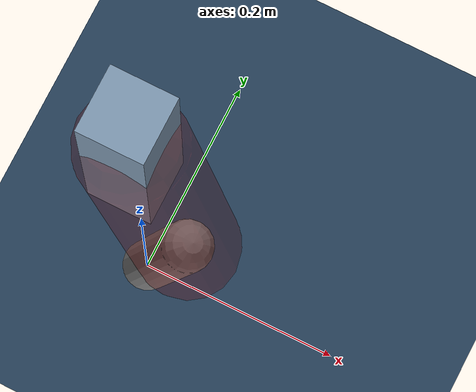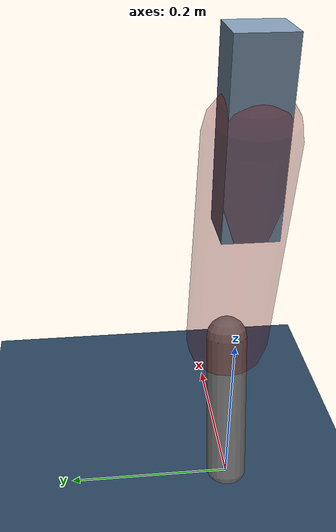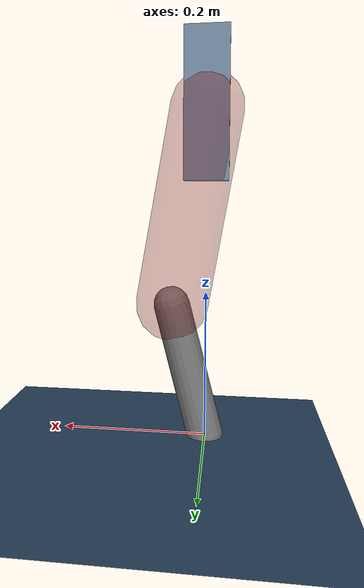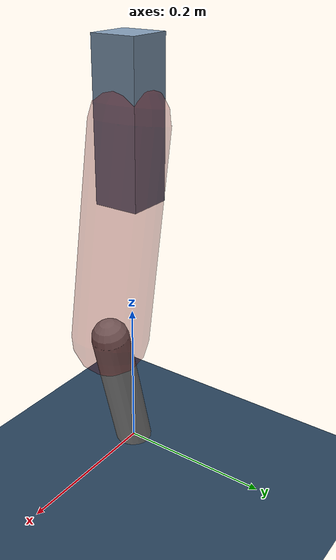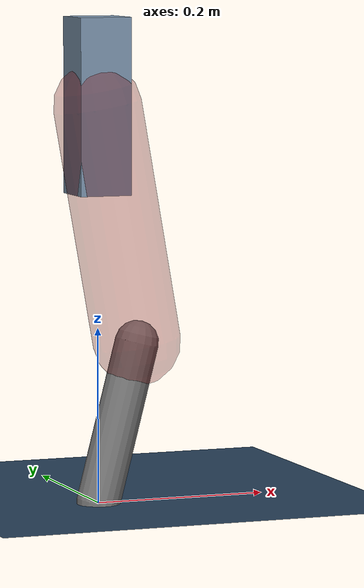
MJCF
<mujoco model="Hopper2D">
	<compiler inertiafromgeom="true" angle="radian" />
	<option timestep="0.001" integrator="implicit" cone="elliptic" solver="Newton" tolerance="1e-10" />

	<default>
		<geom contype="1" conaffinity="1" condim="3" friction="2 0.005 0.0001" solref="0.005 1" />
		<joint limited="true" damping="0.1" />
	</default>

	<asset>
		<texture name="skybox" type="skybox" builtin="gradient" rgb1=".4 .6 .8" rgb2="0 0 0" width="800" height="800" />
		<texture name="grid" type="2d" builtin="checker" rgb1=".1 .2 .3" rgb2=".2 .3 .4" width="300" height="300" mark="edge" markrgb=".2 .3 .4" />
		<material name="ground" texture="grid" texrepeat="1 1" texuniform="true" reflectance="0.1" />
		<material name="leg" rgba="0.5 0.6 0.7 1" />
	</asset>

	<worldbody>

		<geom name="floor" type="plane" size="5 5 0.25" material="ground" />

		<light directional="false" diffuse="0.8 0.8 0.8" specular="0.3 0.3 0.3" pos="0 0 2" dir="0 0 -1" />
		<light mode="targetbodycom" target="base" directional="false" diffuse="0.8 0.8 0.8" specular="0.3 0.3 0.3" pos="0 0 2" dir="0 0 -1" />

		<camera name="fixed" pos="0 -2 1" xyaxes="1 0 0 0 0 1" />
		<camera name="tracking" mode="trackcom" pos="0 -3 1" />

		<body name="root" pos="0 0 0.4526834571189917">
			<joint name="slide_x" type="slide" axis="1 0 0" range="-100 100" />
			<joint name="slide_z" type="slide" axis="0 0 1" range="0 10" />

			<body name="base" pos="0 0 0">
				<geom name="torso" type="box" size="0.03 0.03 0.1" mass="3.3259999999999996" material="leg" />

				<body name="link1" pos="0 0 0" euler="0 1.3985946081745717 0">
					<joint type="hinge" axis="0 -1 0" pos="0 0 0" name="hinge1" limited="true" range="-3.14 3.14" stiffness="0" damping="0.1" />
					<geom name="thigh" type="capsule" fromto="0 0 0 0.27414009281544505 0 0" size="0.05" rgba="0.5 0 0 0.3" mass="0.9195782506017016" />

					<body name="link2" pos="0.27414009281544505 0 0" euler="0 0.4239979064287732 0">
						<joint type="hinge" axis="0 -1 0" pos="0 0 0" name="hinge2" limited="true" range="-3.14 3.14" stiffness="0" damping="0.1" />
						<geom name="shank" type="capsule" fromto="0 0 0 0.18854336430354668 0 0" size="0.025" mass="0.391189027873192" />

					</body>
				</body>
			</body>
		</body>
	</worldbody>

	<actuator>
		<motor name="torque1" joint="hinge1" ctrlrange="-173.18642737483228 173.18642737483228" ctrllimited="true" gear="1" />
		<motor name="torque2" joint="hinge2" ctrlrange="-118.02838916418511 118.02838916418511" ctrllimited="true" gear="1" />
	</actuator>
</mujoco>
